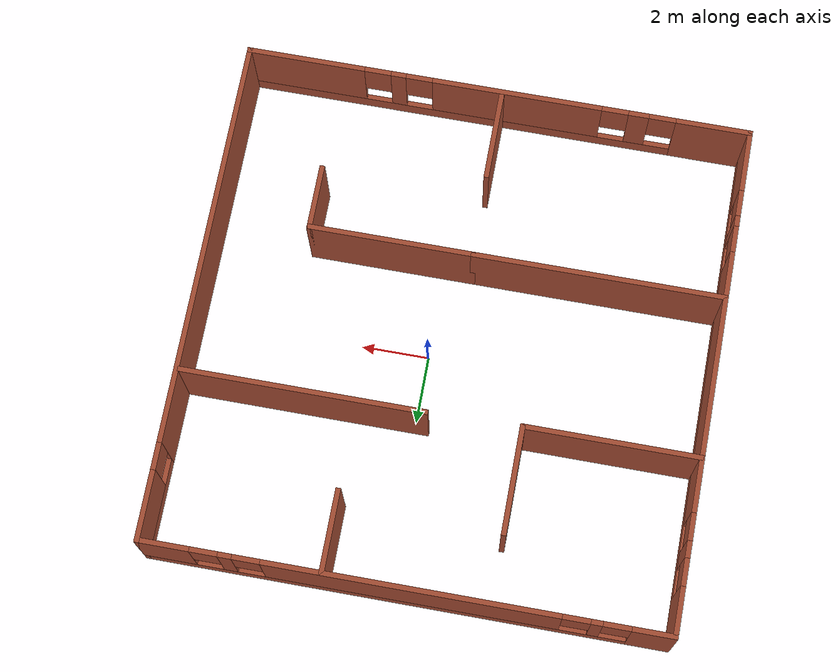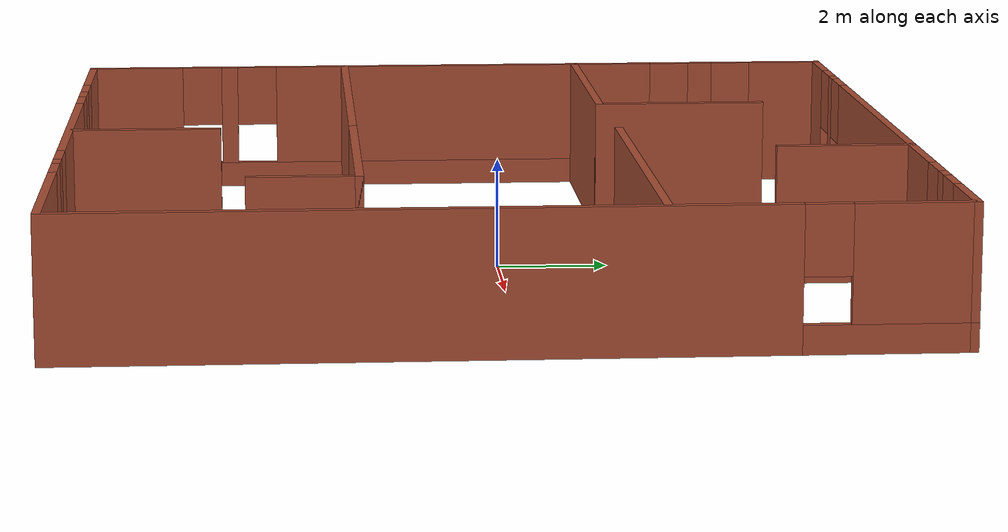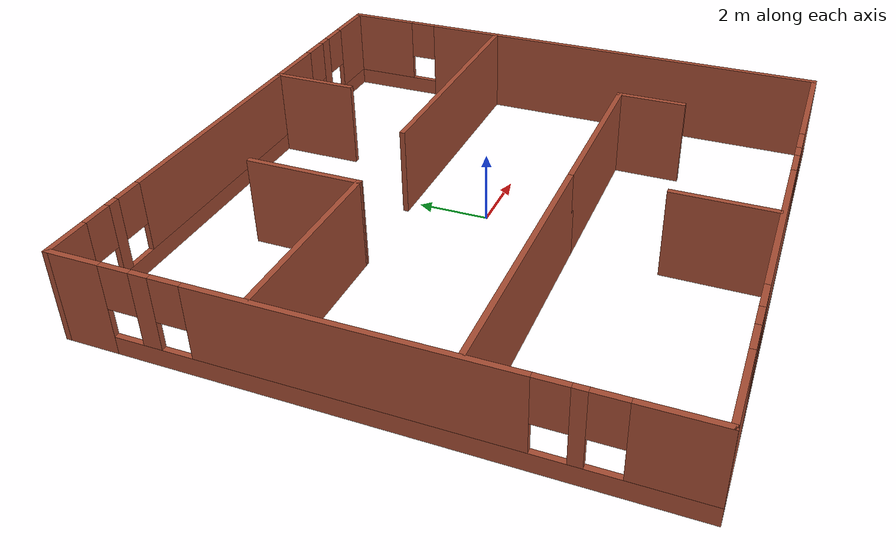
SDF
<?xml version='1.0'?>
<sdf version='1.7'>
  <model name='Untitled'>
    <pose>-0.700552 -0.259285 0 0 -0 0</pose>
    <link name='Wall_0'>
      <pose>-7.55 0 0 0 -0 -1.5708</pose>
      <visual name='Wall_0_Visual_0'>
        <pose>-6.87927 0 1.25 0 -0 0</pose>
        <geometry>
          <box>
            <size>1.49145 0.15 2.5</size>
          </box>
        </geometry>
        <material>
          <script>
            <uri>file://media/materials/scripts/gazebo.material</uri>
            <name>Gazebo/Bricks</name>
          </script>
          <ambient>1 1 1 1</ambient>
        </material>
        <meta>
          <layer>0</layer>
        </meta>
      </visual>
      <collision name='Wall_0_Collision_0'>
        <geometry>
          <box>
            <size>1.49145 0.15 2.5</size>
          </box>
        </geometry>
        <pose>-6.87927 0 1.25 0 -0 0</pose>
      </collision>
      <visual name='Wall_0_Visual_1'>
        <pose>0.745725 0 0.25 0 -0 0</pose>
        <geometry>
          <box>
            <size>13.7586 0.15 0.5</size>
          </box>
        </geometry>
        <material>
          <script>
            <uri>file://media/materials/scripts/gazebo.material</uri>
            <name>Gazebo/Bricks</name>
          </script>
          <ambient>1 1 1 1</ambient>
        </material>
        <meta>
          <layer>0</layer>
        </meta>
      </visual>
      <collision name='Wall_0_Collision_1'>
        <geometry>
          <box>
            <size>13.7586 0.15 0.5</size>
          </box>
        </geometry>
        <pose>0.745725 0 0.25 0 -0 0</pose>
      </collision>
      <visual name='Wall_0_Visual_2'>
        <pose>-5.08626 0 1.5 0 -0 0</pose>
        <geometry>
          <box>
            <size>0.494579 0.15 2</size>
          </box>
        </geometry>
        <material>
          <script>
            <uri>file://media/materials/scripts/gazebo.material</uri>
            <name>Gazebo/Bricks</name>
          </script>
          <ambient>1 1 1 1</ambient>
        </material>
        <meta>
          <layer>0</layer>
        </meta>
      </visual>
      <collision name='Wall_0_Collision_2'>
        <geometry>
          <box>
            <size>0.494579 0.15 2</size>
          </box>
        </geometry>
        <pose>-5.08626 0 1.5 0 -0 0</pose>
      </collision>
      <visual name='Wall_0_Visual_3'>
        <pose>-0.130454 0 1.5 0 -0 0</pose>
        <geometry>
          <box>
            <size>7.81704 0.15 2</size>
          </box>
        </geometry>
        <material>
          <script>
            <uri>file://media/materials/scripts/gazebo.material</uri>
            <name>Gazebo/Bricks</name>
          </script>
          <ambient>1 1 1 1</ambient>
        </material>
        <meta>
          <layer>0</layer>
        </meta>
      </visual>
      <collision name='Wall_0_Collision_3'>
        <geometry>
          <box>
            <size>7.81704 0.15 2</size>
          </box>
        </geometry>
        <pose>-0.130454 0 1.5 0 -0 0</pose>
      </collision>
      <visual name='Wall_0_Visual_4'>
        <pose>4.74444 0 1.5 0 -0 0</pose>
        <geometry>
          <box>
            <size>0.332756 0.15 2</size>
          </box>
        </geometry>
        <material>
          <script>
            <uri>file://media/materials/scripts/gazebo.material</uri>
            <name>Gazebo/Bricks</name>
          </script>
          <ambient>1 1 1 1</ambient>
        </material>
        <meta>
          <layer>0</layer>
        </meta>
      </visual>
      <collision name='Wall_0_Collision_4'>
        <geometry>
          <box>
            <size>0.332756 0.15 2</size>
          </box>
        </geometry>
        <pose>4.74444 0 1.5 0 -0 0</pose>
      </collision>
      <visual name='Wall_0_Visual_5'>
        <pose>6.66791 0 1.5 0 -0 0</pose>
        <geometry>
          <box>
            <size>1.91418 0.15 2</size>
          </box>
        </geometry>
        <material>
          <script>
            <uri>file://media/materials/scripts/gazebo.material</uri>
            <name>Gazebo/Bricks</name>
          </script>
          <ambient>1 1 1 1</ambient>
        </material>
        <meta>
          <layer>0</layer>
        </meta>
      </visual>
      <collision name='Wall_0_Collision_5'>
        <geometry>
          <box>
            <size>1.91418 0.15 2</size>
          </box>
        </geometry>
        <pose>6.66791 0 1.5 0 -0 0</pose>
      </collision>
      <visual name='Wall_0_Visual_6'>
        <pose>-5.73355 0 1.9 0 -0 0</pose>
        <geometry>
          <box>
            <size>0.8 0.15 1.2</size>
          </box>
        </geometry>
        <material>
          <script>
            <uri>file://media/materials/scripts/gazebo.material</uri>
            <name>Gazebo/Bricks</name>
          </script>
          <ambient>1 1 1 1</ambient>
        </material>
        <meta>
          <layer>0</layer>
        </meta>
      </visual>
      <collision name='Wall_0_Collision_6'>
        <geometry>
          <box>
            <size>0.8 0.15 1.2</size>
          </box>
        </geometry>
        <pose>-5.73355 0 1.9 0 -0 0</pose>
      </collision>
      <visual name='Wall_0_Visual_7'>
        <pose>-4.43897 0 1.9 0 -0 0</pose>
        <geometry>
          <box>
            <size>0.8 0.15 1.2</size>
          </box>
        </geometry>
        <material>
          <script>
            <uri>file://media/materials/scripts/gazebo.material</uri>
            <name>Gazebo/Bricks</name>
          </script>
          <ambient>1 1 1 1</ambient>
        </material>
        <meta>
          <layer>0</layer>
        </meta>
      </visual>
      <collision name='Wall_0_Collision_7'>
        <geometry>
          <box>
            <size>0.8 0.15 1.2</size>
          </box>
        </geometry>
        <pose>-4.43897 0 1.9 0 -0 0</pose>
      </collision>
      <visual name='Wall_0_Visual_8'>
        <pose>4.17807 0 1.9 0 -0 0</pose>
        <geometry>
          <box>
            <size>0.8 0.15 1.2</size>
          </box>
        </geometry>
        <material>
          <script>
            <uri>file://media/materials/scripts/gazebo.material</uri>
            <name>Gazebo/Bricks</name>
          </script>
          <ambient>1 1 1 1</ambient>
        </material>
        <meta>
          <layer>0</layer>
        </meta>
      </visual>
      <collision name='Wall_0_Collision_8'>
        <geometry>
          <box>
            <size>0.8 0.15 1.2</size>
          </box>
        </geometry>
        <pose>4.17807 0 1.9 0 -0 0</pose>
      </collision>
      <visual name='Wall_0_Visual_9'>
        <pose>5.31082 0 1.9 0 -0 0</pose>
        <geometry>
          <box>
            <size>0.8 0.15 1.2</size>
          </box>
        </geometry>
        <material>
          <script>
            <uri>file://media/materials/scripts/gazebo.material</uri>
            <name>Gazebo/Bricks</name>
          </script>
          <ambient>1 1 1 1</ambient>
        </material>
        <meta>
          <layer>0</layer>
        </meta>
      </visual>
      <collision name='Wall_0_Collision_9'>
        <geometry>
          <box>
            <size>0.8 0.15 1.2</size>
          </box>
        </geometry>
        <pose>5.31082 0 1.9 0 -0 0</pose>
      </collision>
    </link>
    <link name='Wall_11'>
      <collision name='Wall_11_Collision'>
        <geometry>
          <box>
            <size>2.5 0.15 2.5</size>
          </box>
        </geometry>
        <pose>0 0 1.25 0 -0 0</pose>
      </collision>
      <visual name='Wall_11_Visual'>
        <pose>0 0 1.25 0 -0 0</pose>
        <geometry>
          <box>
            <size>2.5 0.15 2.5</size>
          </box>
        </geometry>
        <material>
          <script>
            <uri>file://media/materials/scripts/gazebo.material</uri>
            <name>Gazebo/Bricks</name>
          </script>
          <ambient>1 1 1 1</ambient>
        </material>
        <meta>
          <layer>0</layer>
        </meta>
      </visual>
      <pose>2.33157 6.36777 0 0 -0 -1.5708</pose>
    </link>
    <link name='Wall_13'>
      <collision name='Wall_13_Collision'>
        <geometry>
          <box>
            <size>7.25 0.15 2.5</size>
          </box>
        </geometry>
        <pose>0 0 1.25 0 -0 0</pose>
      </collision>
      <visual name='Wall_13_Visual'>
        <pose>0 0 1.25 0 -0 0</pose>
        <geometry>
          <box>
            <size>7.25 0.15 2.5</size>
          </box>
        </geometry>
        <material>
          <script>
            <uri>file://media/materials/scripts/gazebo.material</uri>
            <name>Gazebo/Bricks</name>
          </script>
          <ambient>1 1 1 1</ambient>
        </material>
        <meta>
          <layer>0</layer>
        </meta>
      </visual>
      <pose>3.89013 2.52597 0 0 -0 3.14159</pose>
    </link>
    <link name='Wall_15'>
      <collision name='Wall_15_Collision'>
        <geometry>
          <box>
            <size>7.5 0.15 2.5</size>
          </box>
        </geometry>
        <pose>0 0 1.25 0 -0 0</pose>
      </collision>
      <visual name='Wall_15_Visual'>
        <pose>0 0 1.25 0 -0 0</pose>
        <geometry>
          <box>
            <size>7.5 0.15 2.5</size>
          </box>
        </geometry>
        <material>
          <script>
            <uri>file://media/materials/scripts/gazebo.material</uri>
            <name>Gazebo/Bricks</name>
          </script>
          <ambient>1 1 1 1</ambient>
        </material>
        <meta>
          <layer>0</layer>
        </meta>
      </visual>
      <pose>-3.84578 -2.35756 0 0 -0 0</pose>
    </link>
    <link name='Wall_17'>
      <collision name='Wall_17_Collision'>
        <geometry>
          <box>
            <size>2.75 0.15 2.5</size>
          </box>
        </geometry>
        <pose>0 0 1.25 0 -0 0</pose>
      </collision>
      <visual name='Wall_17_Visual'>
        <pose>0 0 1.25 0 -0 0</pose>
        <geometry>
          <box>
            <size>2.75 0.15 2.5</size>
          </box>
        </geometry>
        <material>
          <script>
            <uri>file://media/materials/scripts/gazebo.material</uri>
            <name>Gazebo/Bricks</name>
          </script>
          <ambient>1 1 1 1</ambient>
        </material>
        <meta>
          <layer>0</layer>
        </meta>
      </visual>
      <pose>-0.117405 -6.15497 0 0 -0 1.5708</pose>
    </link>
    <link name='Wall_19'>
      <collision name='Wall_19_Collision'>
        <geometry>
          <box>
            <size>5 0.15 2.5</size>
          </box>
        </geometry>
        <pose>0 0 1.25 0 -0 0</pose>
      </collision>
      <visual name='Wall_19_Visual'>
        <pose>0 0 1.25 0 -0 0</pose>
        <geometry>
          <box>
            <size>5 0.15 2.5</size>
          </box>
        </geometry>
        <material>
          <script>
            <uri>file://media/materials/scripts/gazebo.material</uri>
            <name>Gazebo/Bricks</name>
          </script>
          <ambient>1 1 1 1</ambient>
        </material>
        <meta>
          <layer>0</layer>
        </meta>
      </visual>
      <pose>2.25422 -2.35756 0 0 -0 0</pose>
    </link>
    <link name='Wall_2'>
      <pose>-0 -7.55 0 0 -0 0</pose>
      <visual name='Wall_2_Visual_0'>
        <pose>-6.48153 0 1.25 0 -0 0</pose>
        <geometry>
          <box>
            <size>2.28693 0.15 2.5</size>
          </box>
        </geometry>
        <material>
          <script>
            <uri>file://media/materials/scripts/gazebo.material</uri>
            <name>Gazebo/Bricks</name>
          </script>
          <ambient>1 1 1 1</ambient>
        </material>
        <meta>
          <layer>0</layer>
        </meta>
      </visual>
      <collision name='Wall_2_Collision_0'>
        <geometry>
          <box>
            <size>2.28693 0.15 2.5</size>
          </box>
        </geometry>
        <pose>-6.48153 0 1.25 0 -0 0</pose>
      </collision>
      <visual name='Wall_2_Visual_1'>
        <pose>1.14347 0 0.25 0 -0 0</pose>
        <geometry>
          <box>
            <size>12.9631 0.15 0.5</size>
          </box>
        </geometry>
        <material>
          <script>
            <uri>file://media/materials/scripts/gazebo.material</uri>
            <name>Gazebo/Bricks</name>
          </script>
          <ambient>1 1 1 1</ambient>
        </material>
        <meta>
          <layer>0</layer>
        </meta>
      </visual>
      <collision name='Wall_2_Collision_1'>
        <geometry>
          <box>
            <size>12.9631 0.15 0.5</size>
          </box>
        </geometry>
        <pose>1.14347 0 0.25 0 -0 0</pose>
      </collision>
      <visual name='Wall_2_Visual_2'>
        <pose>-4.2301 0 1.5 0 -0 0</pose>
        <geometry>
          <box>
            <size>0.615945 0.15 2</size>
          </box>
        </geometry>
        <material>
          <script>
            <uri>file://media/materials/scripts/gazebo.material</uri>
            <name>Gazebo/Bricks</name>
          </script>
          <ambient>1 1 1 1</ambient>
        </material>
        <meta>
          <layer>0</layer>
        </meta>
      </visual>
      <collision name='Wall_2_Collision_2'>
        <geometry>
          <box>
            <size>0.615945 0.15 2</size>
          </box>
        </geometry>
        <pose>-4.2301 0 1.5 0 -0 0</pose>
      </collision>
      <visual name='Wall_2_Visual_3'>
        <pose>-0.565642 0 1.5 0 -0 0</pose>
        <geometry>
          <box>
            <size>5.11296 0.15 2</size>
          </box>
        </geometry>
        <material>
          <script>
            <uri>file://media/materials/scripts/gazebo.material</uri>
            <name>Gazebo/Bricks</name>
          </script>
          <ambient>1 1 1 1</ambient>
        </material>
        <meta>
          <layer>0</layer>
        </meta>
      </visual>
      <collision name='Wall_2_Collision_3'>
        <geometry>
          <box>
            <size>5.11296 0.15 2</size>
          </box>
        </geometry>
        <pose>-0.565642 0 1.5 0 -0 0</pose>
      </collision>
      <visual name='Wall_2_Visual_4'>
        <pose>3.0179 0 1.5 0 -0 0</pose>
        <geometry>
          <box>
            <size>0.454123 0.15 2</size>
          </box>
        </geometry>
        <material>
          <script>
            <uri>file://media/materials/scripts/gazebo.material</uri>
            <name>Gazebo/Bricks</name>
          </script>
          <ambient>1 1 1 1</ambient>
        </material>
        <meta>
          <layer>0</layer>
        </meta>
      </visual>
      <collision name='Wall_2_Collision_4'>
        <geometry>
          <box>
            <size>0.454123 0.15 2</size>
          </box>
        </geometry>
        <pose>3.0179 0 1.5 0 -0 0</pose>
      </collision>
      <visual name='Wall_2_Visual_5'>
        <pose>5.83498 0 1.5 0 -0 0</pose>
        <geometry>
          <box>
            <size>3.58004 0.15 2</size>
          </box>
        </geometry>
        <material>
          <script>
            <uri>file://media/materials/scripts/gazebo.material</uri>
            <name>Gazebo/Bricks</name>
          </script>
          <ambient>1 1 1 1</ambient>
        </material>
        <meta>
          <layer>0</layer>
        </meta>
      </visual>
      <collision name='Wall_2_Collision_5'>
        <geometry>
          <box>
            <size>3.58004 0.15 2</size>
          </box>
        </geometry>
        <pose>5.83498 0 1.5 0 -0 0</pose>
      </collision>
      <visual name='Wall_2_Visual_6'>
        <pose>-4.93807 0 1.9 0 -0 0</pose>
        <geometry>
          <box>
            <size>0.8 0.15 1.2</size>
          </box>
        </geometry>
        <material>
          <script>
            <uri>file://media/materials/scripts/gazebo.material</uri>
            <name>Gazebo/Bricks</name>
          </script>
          <ambient>1 1 1 1</ambient>
        </material>
        <meta>
          <layer>0</layer>
        </meta>
      </visual>
      <collision name='Wall_2_Collision_6'>
        <geometry>
          <box>
            <size>0.8 0.15 1.2</size>
          </box>
        </geometry>
        <pose>-4.93807 0 1.9 0 -0 0</pose>
      </collision>
      <visual name='Wall_2_Visual_7'>
        <pose>-3.52212 0 1.9 0 -0 0</pose>
        <geometry>
          <box>
            <size>0.8 0.15 1.2</size>
          </box>
        </geometry>
        <material>
          <script>
            <uri>file://media/materials/scripts/gazebo.material</uri>
            <name>Gazebo/Bricks</name>
          </script>
          <ambient>1 1 1 1</ambient>
        </material>
        <meta>
          <layer>0</layer>
        </meta>
      </visual>
      <collision name='Wall_2_Collision_7'>
        <geometry>
          <box>
            <size>0.8 0.15 1.2</size>
          </box>
        </geometry>
        <pose>-3.52212 0 1.9 0 -0 0</pose>
      </collision>
      <visual name='Wall_2_Visual_8'>
        <pose>2.39084 0 1.9 0 -0 0</pose>
        <geometry>
          <box>
            <size>0.8 0.15 1.2</size>
          </box>
        </geometry>
        <material>
          <script>
            <uri>file://media/materials/scripts/gazebo.material</uri>
            <name>Gazebo/Bricks</name>
          </script>
          <ambient>1 1 1 1</ambient>
        </material>
        <meta>
          <layer>0</layer>
        </meta>
      </visual>
      <collision name='Wall_2_Collision_8'>
        <geometry>
          <box>
            <size>0.8 0.15 1.2</size>
          </box>
        </geometry>
        <pose>2.39084 0 1.9 0 -0 0</pose>
      </collision>
      <visual name='Wall_2_Visual_9'>
        <pose>3.64496 0 1.9 0 -0 0</pose>
        <geometry>
          <box>
            <size>0.8 0.15 1.2</size>
          </box>
        </geometry>
        <material>
          <script>
            <uri>file://media/materials/scripts/gazebo.material</uri>
            <name>Gazebo/Bricks</name>
          </script>
          <ambient>1 1 1 1</ambient>
        </material>
        <meta>
          <layer>0</layer>
        </meta>
      </visual>
      <collision name='Wall_2_Collision_9'>
        <geometry>
          <box>
            <size>0.8 0.15 1.2</size>
          </box>
        </geometry>
        <pose>3.64496 0 1.9 0 -0 0</pose>
      </collision>
    </link>
    <link name='Wall_20'>
      <collision name='Wall_20_Collision'>
        <geometry>
          <box>
            <size>2 0.15 2.5</size>
          </box>
        </geometry>
        <pose>0 0 1.25 0 -0 0</pose>
      </collision>
      <visual name='Wall_20_Visual'>
        <pose>0 0 1.25 0 -0 0</pose>
        <geometry>
          <box>
            <size>2 0.15 2.5</size>
          </box>
        </geometry>
        <material>
          <script>
            <uri>file://media/materials/scripts/gazebo.material</uri>
            <name>Gazebo/Bricks</name>
          </script>
          <ambient>1 1 1 1</ambient>
        </material>
        <meta>
          <layer>0</layer>
        </meta>
      </visual>
      <pose>4.67922 -3.28256 0 0 -0 -1.5708</pose>
    </link>
    <link name='Wall_4'>
      <pose>7.55 0 0 0 -0 1.5708</pose>
      <visual name='Wall_4_Visual_0'>
        <pose>-1.44914 0 1.25 0 -0 0</pose>
        <geometry>
          <box>
            <size>12.3517 0.15 2.5</size>
          </box>
        </geometry>
        <material>
          <script>
            <uri>file://media/materials/scripts/gazebo.material</uri>
            <name>Gazebo/Bricks</name>
          </script>
          <ambient>1 1 1 1</ambient>
        </material>
        <meta>
          <layer>0</layer>
        </meta>
      </visual>
      <collision name='Wall_4_Collision_0'>
        <geometry>
          <box>
            <size>12.3517 0.15 2.5</size>
          </box>
        </geometry>
        <pose>-1.44914 0 1.25 0 -0 0</pose>
      </collision>
      <visual name='Wall_4_Visual_1'>
        <pose>6.17586 0 0.25 0 -0 0</pose>
        <geometry>
          <box>
            <size>2.89828 0.15 0.5</size>
          </box>
        </geometry>
        <material>
          <script>
            <uri>file://media/materials/scripts/gazebo.material</uri>
            <name>Gazebo/Bricks</name>
          </script>
          <ambient>1 1 1 1</ambient>
        </material>
        <meta>
          <layer>0</layer>
        </meta>
      </visual>
      <collision name='Wall_4_Collision_1'>
        <geometry>
          <box>
            <size>2.89828 0.15 0.5</size>
          </box>
        </geometry>
        <pose>6.17586 0 0.25 0 -0 0</pose>
      </collision>
      <visual name='Wall_4_Visual_2'>
        <pose>6.57586 0 1.5 0 -0 0</pose>
        <geometry>
          <box>
            <size>2.09828 0.15 2</size>
          </box>
        </geometry>
        <material>
          <script>
            <uri>file://media/materials/scripts/gazebo.material</uri>
            <name>Gazebo/Bricks</name>
          </script>
          <ambient>1 1 1 1</ambient>
        </material>
        <meta>
          <layer>0</layer>
        </meta>
      </visual>
      <collision name='Wall_4_Collision_2'>
        <geometry>
          <box>
            <size>2.09828 0.15 2</size>
          </box>
        </geometry>
        <pose>6.57586 0 1.5 0 -0 0</pose>
      </collision>
      <visual name='Wall_4_Visual_3'>
        <pose>5.12672 0 1.9 0 -0 0</pose>
        <geometry>
          <box>
            <size>0.8 0.15 1.2</size>
          </box>
        </geometry>
        <material>
          <script>
            <uri>file://media/materials/scripts/gazebo.material</uri>
            <name>Gazebo/Bricks</name>
          </script>
          <ambient>1 1 1 1</ambient>
        </material>
        <meta>
          <layer>0</layer>
        </meta>
      </visual>
      <collision name='Wall_4_Collision_3'>
        <geometry>
          <box>
            <size>0.8 0.15 1.2</size>
          </box>
        </geometry>
        <pose>5.12672 0 1.9 0 -0 0</pose>
      </collision>
    </link>
    <link name='Wall_6'>
      <pose>-0 7.55 0 0 -0 0</pose>
      <visual name='Wall_6_Visual_0'>
        <pose>-6.984 0 1.25 0 -0 0</pose>
        <geometry>
          <box>
            <size>1.28199 0.15 2.5</size>
          </box>
        </geometry>
        <material>
          <script>
            <uri>file://media/materials/scripts/gazebo.material</uri>
            <name>Gazebo/Bricks</name>
          </script>
          <ambient>1 1 1 1</ambient>
        </material>
        <meta>
          <layer>0</layer>
        </meta>
      </visual>
      <collision name='Wall_6_Collision_0'>
        <geometry>
          <box>
            <size>1.28199 0.15 2.5</size>
          </box>
        </geometry>
        <pose>-6.984 0 1.25 0 -0 0</pose>
      </collision>
      <visual name='Wall_6_Visual_1'>
        <pose>0.640996 0 0.25 0 -0 0</pose>
        <geometry>
          <box>
            <size>13.968 0.15 0.5</size>
          </box>
        </geometry>
        <material>
          <script>
            <uri>file://media/materials/scripts/gazebo.material</uri>
            <name>Gazebo/Bricks</name>
          </script>
          <ambient>1 1 1 1</ambient>
        </material>
        <meta>
          <layer>0</layer>
        </meta>
      </visual>
      <collision name='Wall_6_Collision_1'>
        <geometry>
          <box>
            <size>13.968 0.15 0.5</size>
          </box>
        </geometry>
        <pose>0.640996 0 0.25 0 -0 0</pose>
      </collision>
      <visual name='Wall_6_Visual_2'>
        <pose>-5.37663 0 1.5 0 -0 0</pose>
        <geometry>
          <box>
            <size>0.332756 0.15 2</size>
          </box>
        </geometry>
        <material>
          <script>
            <uri>file://media/materials/scripts/gazebo.material</uri>
            <name>Gazebo/Bricks</name>
          </script>
          <ambient>1 1 1 1</ambient>
        </material>
        <meta>
          <layer>0</layer>
        </meta>
      </visual>
      <collision name='Wall_6_Collision_2'>
        <geometry>
          <box>
            <size>0.332756 0.15 2</size>
          </box>
        </geometry>
        <pose>-5.37663 0 1.5 0 -0 0</pose>
      </collision>
      <visual name='Wall_6_Visual_3'>
        <pose>-0.171694 0 1.5 0 -0 0</pose>
        <geometry>
          <box>
            <size>8.47712 0.15 2</size>
          </box>
        </geometry>
        <material>
          <script>
            <uri>file://media/materials/scripts/gazebo.material</uri>
            <name>Gazebo/Bricks</name>
          </script>
          <ambient>1 1 1 1</ambient>
        </material>
        <meta>
          <layer>0</layer>
        </meta>
      </visual>
      <collision name='Wall_6_Collision_3'>
        <geometry>
          <box>
            <size>8.47712 0.15 2</size>
          </box>
        </geometry>
        <pose>-0.171694 0 1.5 0 -0 0</pose>
      </collision>
      <visual name='Wall_6_Visual_4'>
        <pose>5.0673 0 1.5 0 -0 0</pose>
        <geometry>
          <box>
            <size>0.400877 0.15 2</size>
          </box>
        </geometry>
        <material>
          <script>
            <uri>file://media/materials/scripts/gazebo.material</uri>
            <name>Gazebo/Bricks</name>
          </script>
          <ambient>1 1 1 1</ambient>
        </material>
        <meta>
          <layer>0</layer>
        </meta>
      </visual>
      <collision name='Wall_6_Collision_4'>
        <geometry>
          <box>
            <size>0.400877 0.15 2</size>
          </box>
        </geometry>
        <pose>5.0673 0 1.5 0 -0 0</pose>
      </collision>
      <visual name='Wall_6_Visual_5'>
        <pose>6.84637 0 1.5 0 -0 0</pose>
        <geometry>
          <box>
            <size>1.55726 0.15 2</size>
          </box>
        </geometry>
        <material>
          <script>
            <uri>file://media/materials/scripts/gazebo.material</uri>
            <name>Gazebo/Bricks</name>
          </script>
          <ambient>1 1 1 1</ambient>
        </material>
        <meta>
          <layer>0</layer>
        </meta>
      </visual>
      <collision name='Wall_6_Collision_5'>
        <geometry>
          <box>
            <size>1.55726 0.15 2</size>
          </box>
        </geometry>
        <pose>6.84637 0 1.5 0 -0 0</pose>
      </collision>
      <visual name='Wall_6_Visual_6'>
        <pose>-5.94301 0 1.9 0 -0 0</pose>
        <geometry>
          <box>
            <size>0.8 0.15 1.2</size>
          </box>
        </geometry>
        <material>
          <script>
            <uri>file://media/materials/scripts/gazebo.material</uri>
            <name>Gazebo/Bricks</name>
          </script>
          <ambient>1 1 1 1</ambient>
        </material>
        <meta>
          <layer>0</layer>
        </meta>
      </visual>
      <collision name='Wall_6_Collision_6'>
        <geometry>
          <box>
            <size>0.8 0.15 1.2</size>
          </box>
        </geometry>
        <pose>-5.94301 0 1.9 0 -0 0</pose>
      </collision>
      <visual name='Wall_6_Visual_7'>
        <pose>-4.81025 0 1.9 0 -0 0</pose>
        <geometry>
          <box>
            <size>0.8 0.15 1.2</size>
          </box>
        </geometry>
        <material>
          <script>
            <uri>file://media/materials/scripts/gazebo.material</uri>
            <name>Gazebo/Bricks</name>
          </script>
          <ambient>1 1 1 1</ambient>
        </material>
        <meta>
          <layer>0</layer>
        </meta>
      </visual>
      <collision name='Wall_6_Collision_7'>
        <geometry>
          <box>
            <size>0.8 0.15 1.2</size>
          </box>
        </geometry>
        <pose>-4.81025 0 1.9 0 -0 0</pose>
      </collision>
      <visual name='Wall_6_Visual_8'>
        <pose>4.46687 0 1.9 0 -0 0</pose>
        <geometry>
          <box>
            <size>0.8 0.15 1.2</size>
          </box>
        </geometry>
        <material>
          <script>
            <uri>file://media/materials/scripts/gazebo.material</uri>
            <name>Gazebo/Bricks</name>
          </script>
          <ambient>1 1 1 1</ambient>
        </material>
        <meta>
          <layer>0</layer>
        </meta>
      </visual>
      <collision name='Wall_6_Collision_8'>
        <geometry>
          <box>
            <size>0.8 0.15 1.2</size>
          </box>
        </geometry>
        <pose>4.46687 0 1.9 0 -0 0</pose>
      </collision>
      <visual name='Wall_6_Visual_9'>
        <pose>5.66774 0 1.9 0 -0 0</pose>
        <geometry>
          <box>
            <size>0.8 0.15 1.2</size>
          </box>
        </geometry>
        <material>
          <script>
            <uri>file://media/materials/scripts/gazebo.material</uri>
            <name>Gazebo/Bricks</name>
          </script>
          <ambient>1 1 1 1</ambient>
        </material>
        <meta>
          <layer>0</layer>
        </meta>
      </visual>
      <collision name='Wall_6_Collision_9'>
        <geometry>
          <box>
            <size>0.8 0.15 1.2</size>
          </box>
        </geometry>
        <pose>5.66774 0 1.9 0 -0 0</pose>
      </collision>
    </link>
    <link name='Wall_8'>
      <collision name='Wall_8_Collision'>
        <geometry>
          <box>
            <size>5.25 0.15 2.5</size>
          </box>
        </geometry>
        <pose>0 0 1.25 0 -0 0</pose>
      </collision>
      <visual name='Wall_8_Visual'>
        <pose>0 0 1.25 0 -0 0</pose>
        <geometry>
          <box>
            <size>5.25 0.15 2.5</size>
          </box>
        </geometry>
        <material>
          <script>
            <uri>file://media/materials/scripts/gazebo.material</uri>
            <name>Gazebo/Bricks</name>
          </script>
          <ambient>1 1 1 1</ambient>
        </material>
        <meta>
          <layer>0</layer>
        </meta>
      </visual>
      <pose>-4.98744 2.44703 0 0 -0 0</pose>
    </link>
    <link name='Wall_9'>
      <collision name='Wall_9_Collision'>
        <geometry>
          <box>
            <size>3.25 0.15 2.5</size>
          </box>
        </geometry>
        <pose>0 0 1.25 0 -0 0</pose>
      </collision>
      <visual name='Wall_9_Visual'>
        <pose>0 0 1.25 0 -0 0</pose>
        <geometry>
          <box>
            <size>3.25 0.15 2.5</size>
          </box>
        </geometry>
        <material>
          <script>
            <uri>file://media/materials/scripts/gazebo.material</uri>
            <name>Gazebo/Bricks</name>
          </script>
          <ambient>1 1 1 1</ambient>
        </material>
        <meta>
          <layer>0</layer>
        </meta>
      </visual>
      <pose>-2.43744 3.99703 0 0 -0 1.5708</pose>
    </link>
    <static>1</static>
  </model>
</sdf>
